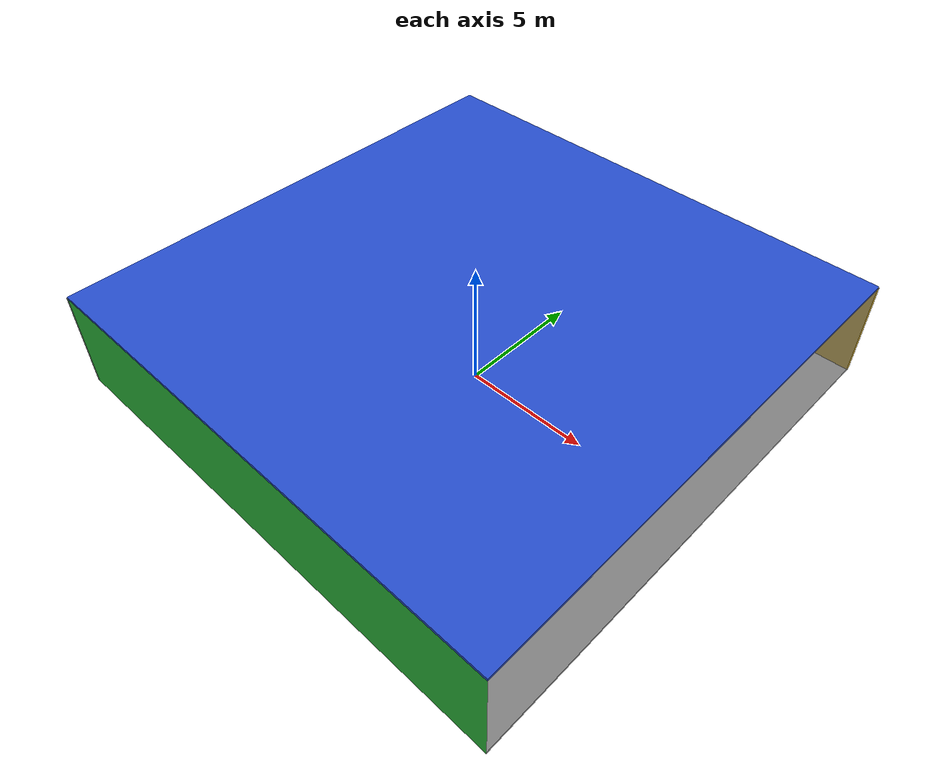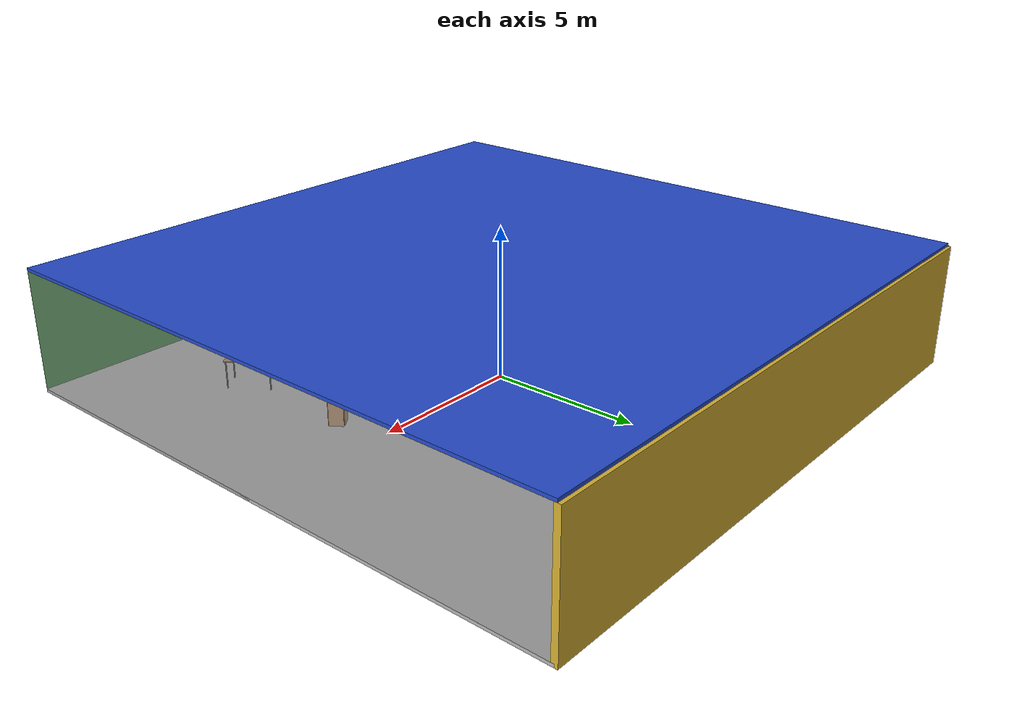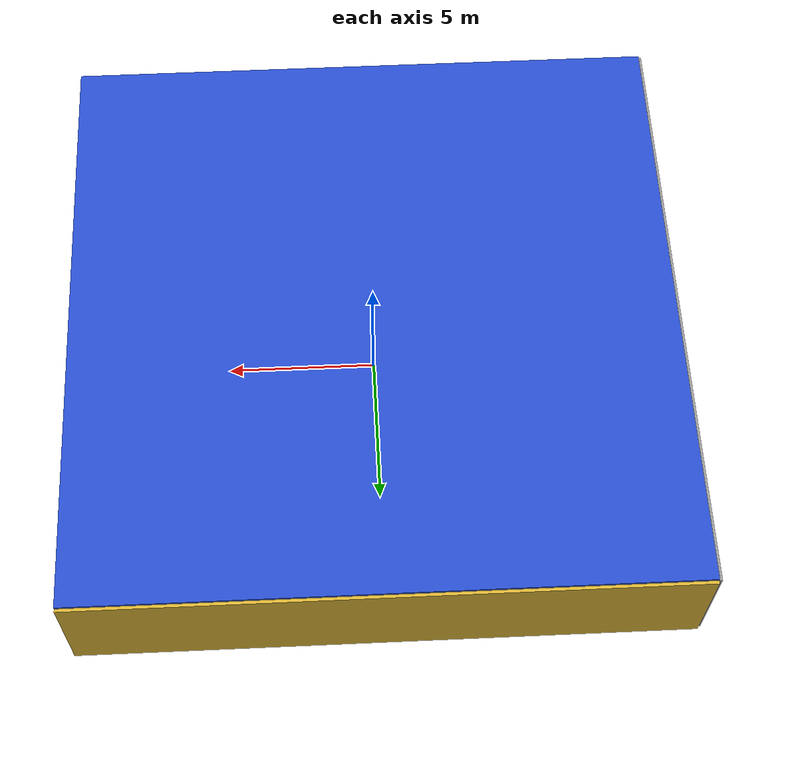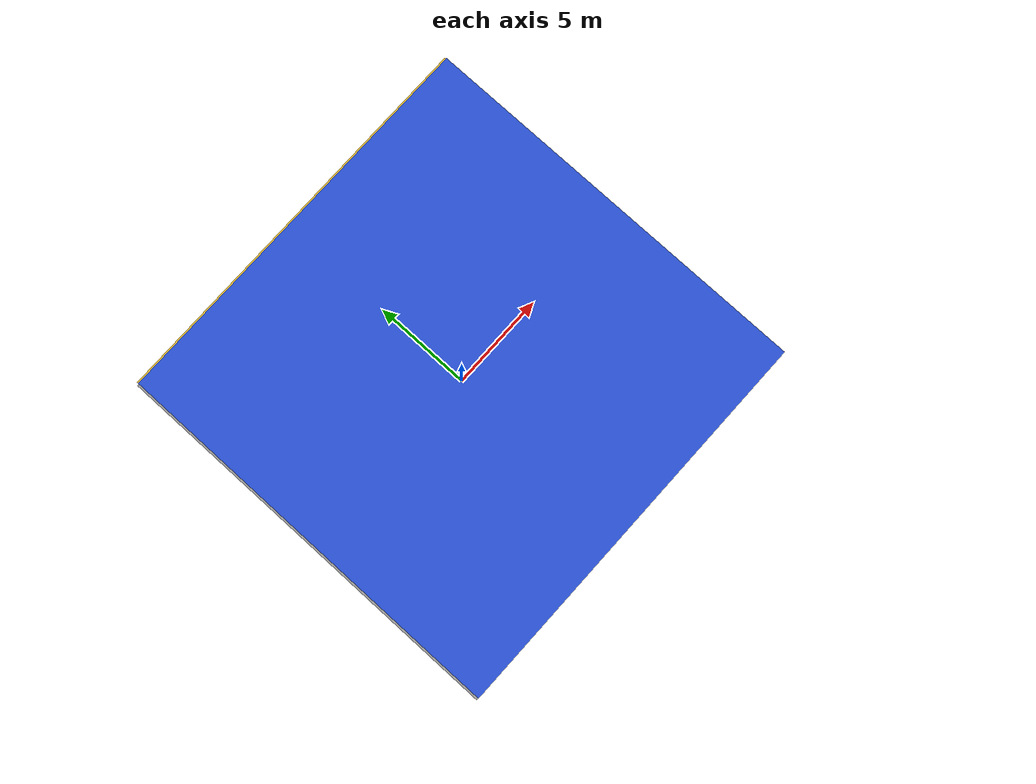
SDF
<sdf version="1.4">
 <world name="default">
  <physics type="ode">
   <max_step_size>0.001</max_step_size>
   <real_time_factor>1</real_time_factor>
   <real_time_update_rate>1000</real_time_update_rate>
   <gravity>0 0 -9.8</gravity>
  </physics>
  <scene><ambient>0.4 0.4 0.4 1</ambient><background>0.7 0.7 0.7 1</background><shadows>1</shadows></scene>
  <model name="Surrounding">
   <static>1</static>
   <link name="Ceiling">
    <collision name="Ceiling_Collision"><geometry><box><size>20 20 0.1</size></box></geometry></collision>
    <visual name="Ceiling_Visual">
     <geometry><box><size>20 20 0.1</size></box></geometry>
     <material>
      <script><uri>file://media/materials/scripts/gazebo.material</uri><name>Gazebo/BlueLaser</name></script>
     </material>
    </visual>
    <pose>0 0 4.05 0 0 0</pose>
   </link>
   <link name="Wall_South">
    <collision name="Wall_South_Collision">
     <geometry><box><size>20 0 4</size></box></geometry>
     <pose>0 0 2 0 -0 0</pose>
    </collision>
    <visual name="Wall_South_Visual">
     <pose>0 0 2 0 -0 0</pose>
     <geometry><box><size>20 0 4</size></box></geometry>
     <material>
      <script><uri>file://media/materials/scripts/gazebo.material</uri><name>Gazebo/Green</name></script>
     </material>
    </visual>
    <velocity_decay><linear>0</linear><angular>0</angular></velocity_decay>
    <pose>0 -10 0 0 -0 0</pose>
   </link>
   <link name="Wall_East">
    <collision name="Wall_21_Collision">
     <geometry><box><size>20 0 4</size></box></geometry>
     <pose>0 0 2 0 -0 0</pose>
    </collision>
    <visual name="Wall_21_Visual">
     <pose>0 0 2 0 -0 0</pose>
     <geometry><box><size>20 0 4</size></box></geometry>
     <material>
      <script><uri>file://media/materials/scripts/gazebo.material</uri><name>Gazebo/GreyTransparent</name></script>
     </material>
    </visual>
    <velocity_decay><linear>0</linear><angular>0</angular></velocity_decay>
    <pose>10 0 0 0 -0 1.5708</pose>
   </link>
   <link name="Wall_North">
    <collision name="Wall_22_Collision">
     <geometry><box><size>20 0.2 4</size></box></geometry>
     <pose>0 0 2 0 -0 0</pose>
    </collision>
    <visual name="Wall_22_Visual">
     <pose>0 0 2 0 -0 0</pose>
     <geometry><box><size>20 0.2 4</size></box></geometry>
     <material>
      <script><uri>file://media/materials/scripts/gazebo.material</uri><name>Gazebo/Gold</name></script>
     </material>
    </visual>
    <velocity_decay><linear>0</linear><angular>0</angular></velocity_decay>
    <pose>0 10 0 0 -0 0</pose>
   </link>
   <link name="Wall_West">
    <collision name="Wall_23_Collision">
     <geometry><box><size>20 0.2 4</size></box></geometry>
     <pose>0 0 2 0 -0 0</pose>
    </collision>
    <visual name="Wall_23_Visual">
     <pose>0 0 2 0 -0 0</pose>
     <geometry><box><size>20 0.2 4</size></box></geometry>
     <material>
      <script><uri>file://media/materials/scripts/gazebo.material</uri><name>Gazebo/Grey</name></script>
     </material>
    </visual>
    <velocity_decay><linear>0</linear><angular>0</angular></velocity_decay>
    <pose>-10 0 0 0 0 -1.5708</pose>
   </link>
   <link name="Ground_link">
    <collision name="collision">
     <pose>0 0 .05 0 -0 0</pose>
     <geometry><box><size>20 20 0.1</size></box></geometry>
    </collision>
    <visual name="visual">
     <pose>0 0 .05 0 -0 0</pose>
     <geometry><box><size>20 20 0.1</size></box></geometry>
     <material>
      <script><uri>file://media/materials/scripts/gazebo.material</uri><name>Gazebo/LightOff</name></script>
     </material>
    </visual>
   </link>
   <static>1</static>
  </model>
  <spherical_coordinates>
   <surface_model>EARTH_WGS84</surface_model>
   <latitude_deg>0</latitude_deg>
   <longitude_deg>0</longitude_deg>
   <elevation>0</elevation>
   <heading_deg>0</heading_deg>
  </spherical_coordinates>
  <light name="lightball_0" type="diffuse">
   <diffuse>0.8 0.8 0.8 1</diffuse>
   <specular>0.2 0.2 0.2 1</specular>
   <attenuation>
    <range>100</range>
    <constant>0.7</constant>
    <linear>0.01</linear>
    <quadratic>0.001</quadratic>
   </attenuation>
   <direction>-0.5 0.1 -0.9</direction>
   <pose>3.0136596727 1.60061382494 3.38700188408 0 0 0</pose>
  </light>
  <light name="lightball_1" type="diffuse">
   <diffuse>0.8 0.8 0.8 1</diffuse>
   <specular>0.2 0.2 0.2 1</specular>
   <attenuation>
    <range>100</range>
    <constant>0.7</constant>
    <linear>0.01</linear>
    <quadratic>0.001</quadratic>
   </attenuation>
   <direction>-0.5 0.1 -0.9</direction>
   <pose>1.60305051659 -0.270401929357 2.07899209942 0 0 0</pose>
  </light>
  <light name="lightball_2" type="diffuse">
   <diffuse>0.8 0.8 0.8 1</diffuse>
   <specular>0.2 0.2 0.2 1</specular>
   <attenuation>
    <range>100</range>
    <constant>0.7</constant>
    <linear>0.01</linear>
    <quadratic>0.001</quadratic>
   </attenuation>
   <direction>-0.5 0.1 -0.9</direction>
   <pose>-9.50304794071 -6.89590156737 0.644569676305 0 0 0</pose>
  </light>
  <light name="lightball_3" type="diffuse">
   <diffuse>0.8 0.8 0.8 1</diffuse>
   <specular>0.2 0.2 0.2 1</specular>
   <attenuation>
    <range>100</range>
    <constant>0.7</constant>
    <linear>0.01</linear>
    <quadratic>0.001</quadratic>
   </attenuation>
   <direction>-0.5 0.1 -0.9</direction>
   <pose>-5.04267404588 -9.34018341837 0.752233719186 0 0 0</pose>
  </light>
  <light name="lightball_4" type="diffuse">
   <diffuse>0.8 0.8 0.8 1</diffuse>
   <specular>0.2 0.2 0.2 1</specular>
   <attenuation>
    <range>100</range>
    <constant>0.7</constant>
    <linear>0.01</linear>
    <quadratic>0.001</quadratic>
   </attenuation>
   <direction>-0.5 0.1 -0.9</direction>
   <pose>7.26583844173 0.278123816117 1.33857644865 0 0 0</pose>
  </light>
  <light name="lightball_5" type="diffuse">
   <diffuse>0.8 0.8 0.8 1</diffuse>
   <specular>0.2 0.2 0.2 1</specular>
   <attenuation>
    <range>100</range>
    <constant>0.7</constant>
    <linear>0.01</linear>
    <quadratic>0.001</quadratic>
   </attenuation>
   <direction>-0.5 0.1 -0.9</direction>
   <pose>-0.337987959079 -7.57929066062 2.4921449748 0 0 0</pose>
  </light>
  <light name="lightball_6" type="diffuse">
   <diffuse>0.8 0.8 0.8 1</diffuse>
   <specular>0.2 0.2 0.2 1</specular>
   <attenuation>
    <range>100</range>
    <constant>0.7</constant>
    <linear>0.01</linear>
    <quadratic>0.001</quadratic>
   </attenuation>
   <direction>-0.5 0.1 -0.9</direction>
   <pose>-8.38755475339 -1.7826778005 3.3236859277 0 0 0</pose>
  </light>
  <light name="lightball_7" type="diffuse">
   <diffuse>0.8 0.8 0.8 1</diffuse>
   <specular>0.2 0.2 0.2 1</specular>
   <attenuation>
    <range>100</range>
    <constant>0.7</constant>
    <linear>0.01</linear>
    <quadratic>0.001</quadratic>
   </attenuation>
   <direction>-0.5 0.1 -0.9</direction>
   <pose>-8.20219220522 7.25897747301 2.15339428415 0 0 0</pose>
  </light>
  <light name="lightball_8" type="diffuse">
   <diffuse>0.8 0.8 0.8 1</diffuse>
   <specular>0.2 0.2 0.2 1</specular>
   <attenuation>
    <range>100</range>
    <constant>0.7</constant>
    <linear>0.01</linear>
    <quadratic>0.001</quadratic>
   </attenuation>
   <direction>-0.5 0.1 -0.9</direction>
   <pose>8.74519998402 -9.6281156979 2.66039688342 0 0 0</pose>
  </light>
  <light name="lightball_9" type="diffuse">
   <diffuse>0.8 0.8 0.8 1</diffuse>
   <specular>0.2 0.2 0.2 1</specular>
   <attenuation>
    <range>100</range>
    <constant>0.7</constant>
    <linear>0.01</linear>
    <quadratic>0.001</quadratic>
   </attenuation>
   <direction>-0.5 0.1 -0.9</direction>
   <pose>4.3881773941 -2.15467361102 3.6792342899 0 0 0</pose>
  </light>
  <light name="lightball_10" type="diffuse">
   <diffuse>0.8 0.8 0.8 1</diffuse>
   <specular>0.2 0.2 0.2 1</specular>
   <attenuation>
    <range>100</range>
    <constant>0.7</constant>
    <linear>0.01</linear>
    <quadratic>0.001</quadratic>
   </attenuation>
   <direction>-0.5 0.1 -0.9</direction>
   <pose>-3.66826232612 -1.97764010614 3.74439483802 0 0 0</pose>
  </light>
  <light name="lightball_11" type="diffuse">
   <diffuse>0.8 0.8 0.8 1</diffuse>
   <specular>0.2 0.2 0.2 1</specular>
   <attenuation>
    <range>100</range>
    <constant>0.7</constant>
    <linear>0.01</linear>
    <quadratic>0.001</quadratic>
   </attenuation>
   <direction>-0.5 0.1 -0.9</direction>
   <pose>1.63857116731 0.291998000337 3.3621876525 0 0 0</pose>
  </light>
  <include>
   <uri>model://robocup_3Dsim_goal</uri>
   <pose>-5.23147255599 -5.5072214591 0 0 0 1.50664369362</pose>
  </include>
  <include>
   <uri>model://construction_cone</uri>
   <pose>-5.55865234448 4.67037469056 0 0 0 1.48220233305</pose>
  </include>
  <include><uri>model://cabinet</uri><pose>-0.824749965078 5.05655441625 0 0 0 0.896018153534</pose></include>
  <include>
   <uri>model://robocup_3Dsim_goal</uri>
   <pose>-1.2796780501 8.57384185517 0 0 0 2.75267672241</pose>
  </include>
  <include><uri>model://cabinet</uri><pose>2.45640430173 -1.25604849412 0 0 0 0.503042526931</pose></include>
  <include><uri>model://table</uri><pose>5.60094779215 -5.45576711305 0 0 0 2.20129527288</pose></include>
  <include><uri>model://cabinet</uri><pose>5.63232128141 -1.4646070753 0 0 0 0.62102573408</pose></include>
 </world>
</sdf>

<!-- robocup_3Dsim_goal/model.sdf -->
<sdf version="1.5">
  <model name="robocup_3d_goal">
    <static>true</static>
    <link name="left_post">
      <pose>0 1.05 0.45 0 0 0</pose>
      <collision name="collision">
        <geometry>
          <cylinder>
            <radius>0.05</radius>
            <length>0.9</length>
          </cylinder>
        </geometry>
      </collision>
      <visual name="visual">
        <geometry>
          <cylinder>
            <radius>0.05</radius>
            <length>0.9</length>
          </cylinder>
        </geometry>
        <material>
          <script>
            <uri>file://media/materials/scripts/gazebo.material</uri>
            <name>Gazebo/ZincYellow</name>
          </script>
        </material>
      </visual>
    </link>
    <link name="left_support_horiz_lower">
      <pose>0.30 1.05 0.01 0 0 0</pose>
      <collision name="collision">
        <geometry>
          <box>
            <size>0.50 0.02 0.02</size>
          </box>
        </geometry>
      </collision>
      <visual name="visual">
        <geometry>
          <box>
            <size>0.50 0.02 0.02</size>
          </box>
        </geometry>
        <material>
          <script>
            <uri>file://media/materials/scripts/gazebo.material</uri>
            <name>Gazebo/White</name>
          </script>
        </material>
      </visual>
    </link>
    <link name="left_support_horiz_upper">
      <pose>0.30 1.05 0.79 0 0 0</pose>
      <collision name="collision">
        <geometry>
          <box>
            <size>0.50 0.02 0.02</size>
          </box>
        </geometry>
      </collision>
      <visual name="visual">
        <geometry>
          <box>
            <size>0.50 0.02 0.02</size>
          </box>
        </geometry>
        <material>
          <script>
            <uri>file://media/materials/scripts/gazebo.material</uri>
            <name>Gazebo/White</name>
          </script>
        </material>
      </visual>
    </link>
    <link name="left_support_vertical">
      <pose>0.56 1.05 0.4 0 1.5708 0</pose>
      <collision name="collision">
        <geometry>
          <box>
            <size>0.80 0.02 0.02</size>
          </box>
        </geometry>
      </collision>
      <visual name="visual">
        <geometry>
          <box>
            <size>0.80 0.02 0.02</size>
          </box>
        </geometry>
        <material>
          <script>
            <uri>file://media/materials/scripts/gazebo.material</uri>
            <name>Gazebo/White</name>
          </script>
        </material>
      </visual>
    </link>
    <link name="right_support_horiz_lower">
      <pose>0.30 -1.05 0.01 0 0 0</pose>
      <collision name="collision">
        <geometry>
          <box>
            <size>0.50 0.02 0.02</size>
          </box>
        </geometry>
      </collision>
      <visual name="visual">
        <geometry>
          <box>
            <size>0.50 0.02 0.02</size>
          </box>
        </geometry>
        <material>
          <script>
            <uri>file://media/materials/scripts/gazebo.material</uri>
            <name>Gazebo/White</name>
          </script>
        </material>
      </visual>
    </link>
    <link name="right_support_horiz_upper">
      <pose>0.30 -1.05 0.79 0 0 0</pose>
      <collision name="collision">
        <geometry>
          <box>
            <size>0.50 0.02 0.02</size>
          </box>
        </geometry>
      </collision>
      <visual name="visual">
        <geometry>
          <box>
            <size>0.50 0.02 0.02</size>
          </box>
        </geometry>
        <material>
          <script>
            <uri>file://media/materials/scripts/gazebo.material</uri>
            <name>Gazebo/White</name>
          </script>
        </material>
      </visual>
    </link>
    <link name="right_support_vertical">
      <pose>0.56 -1.05 0.4 0 1.5708 0</pose>
      <collision name="collision">
        <geometry>
          <box>
            <size>0.80 0.02 0.02</size>
          </box>
        </geometry>
      </collision>
      <visual name="visual">
        <geometry>
          <box>
            <size>0.80 0.02 0.02</size>
          </box>
        </geometry>
        <material>
          <script>
            <uri>file://media/materials/scripts/gazebo.material</uri>
            <name>Gazebo/White</name>
          </script>
        </material>
      </visual>
    </link>
    <link name="center_support_horiz_lower">
      <pose>0.56 0 0.01 0 1.5708 0</pose>
      <collision name="collision">
        <geometry>
          <box>
            <size>0.02 2.08 0.02</size>
          </box>
        </geometry>
      </collision>
      <visual name="visual">
        <geometry>
          <box>
            <size>0.02 2.08 0.02</size>
          </box>
        </geometry>
        <material>
          <script>
            <uri>file://media/materials/scripts/gazebo.material</uri>
            <name>Gazebo/White</name>
          </script>
        </material>
      </visual>
    </link>
    <link name="center_support_horiz_upper">
      <pose>0.56 0 0.79 0 1.5708 0</pose>
      <collision name="collision">
        <geometry>
          <box>
            <size>0.02 2.08 0.02</size>
          </box>
        </geometry>
      </collision>
      <visual name="visual">
        <geometry>
          <box>
            <size>0.02 2.08 0.02</size>
          </box>
        </geometry>
        <material>
          <script>
            <uri>file://media/materials/scripts/gazebo.material</uri>
            <name>Gazebo/White</name>
          </script>
        </material>
      </visual>
    </link>
    <link name="right_post">
      <pose>0 -1.05 0.45 0 0 0</pose>
      <collision name="collision">
        <geometry>
          <cylinder>
            <radius>0.05</radius>
            <length>0.9</length>
          </cylinder>
        </geometry>
      </collision>
      <visual name="visual">
        <geometry>
          <cylinder>
            <radius>0.05</radius>
            <length>0.9</length>
          </cylinder>
        </geometry>
        <material>
          <script>
            <uri>file://media/materials/scripts/gazebo.material</uri>
            <name>Gazebo/ZincYellow</name>
          </script>
        </material>
      </visual>
    </link>
    <link name="crossbar">
      <pose>0 0 0.85 1.57 1.57 0</pose>
      <collision name="collision">
        <geometry>
          <cylinder>
            <radius>0.05</radius>
            <length>2.0</length>
          </cylinder>
        </geometry>
      </collision>
      <visual name="visual">
        <geometry>
          <cylinder>
            <radius>0.05</radius>
            <length>2.0</length>
          </cylinder>
        </geometry>
        <material>
          <script>
            <uri>file://media/materials/scripts/gazebo.material</uri>
            <name>Gazebo/ZincYellow</name>
          </script>
        </material>
      </visual>
    </link>
    <link name="center_net">
      <pose>0.56 0 0.40 0 0 0</pose>
      <collision name="collision">
        <geometry>
          <box>
            <size>0.01 2.1 0.80</size>
          </box>
        </geometry>
      </collision>
      <visual name="visual">
        <geometry>
          <box>
            <size>0.01 2.1 0.80</size>
          </box>
        </geometry>
        <material>
          <script>
            <uri>model://../model_source/models/robocup09_spl_field/materials/scripts/</uri>
            <uri>model://../model_source/models/robocup09_spl_field/materials/textures/</uri>
            <name>RoboCup/Net</name>
          </script>
        </material>
      </visual>
    </link>
    <link name="left_net">
      <pose>0.30 1.05 0.40 0 0 0</pose>
      <collision name="collision">
        <geometry>
          <box>
            <size>0.50 0.01 0.76</size>
          </box>
        </geometry>
      </collision>
      <visual name="visual">
        <geometry>
          <box>
            <size>0.50 0.01 0.76</size>
          </box>
        </geometry>
        <material>
          <script>
            <uri>model://../model_source/models/robocup09_spl_field/materials/scripts/</uri>
            <uri>model://../model_source/models/robocup09_spl_field/materials/textures/</uri>
            <name>RoboCup/Net</name>
          </script>
        </material>
      </visual>
    </link>
    <link name="right_net">
      <pose>0.30 -1.05 0.40 0 0 0</pose>
      <collision name="collision">
        <geometry>
          <box>
            <size>0.50 0.01 0.76</size>
          </box>
        </geometry>
      </collision>
      <visual name="visual">
        <geometry>
          <box>
            <size>0.50 0.01 0.76</size>
          </box>
        </geometry>
        <material>
          <script>
            <uri>model://../model_source/models/robocup09_spl_field/materials/scripts/</uri>
            <uri>model://../model_source/models/robocup09_spl_field/materials/textures/</uri>
            <name>RoboCup/Net</name>
          </script>
        </material>
      </visual>
    </link>
  </model>
</sdf>

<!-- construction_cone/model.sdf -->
<sdf version="1.5">
  <model name="Construction Cone">
    <link name="link">
      <collision name="collision">
        <geometry>
          <mesh>
            <scale>10 10 10</scale>
            <uri>file://isr-testbed/construction_cone/meshes/construction_cone.dae</uri>
          </mesh>
        </geometry>
      </collision>
      <visual name="visual">
        <geometry>
          <mesh>
            <scale>10 10 10</scale>
            <uri>file://isr-testbed/construction_cone/meshes/construction_cone.dae</uri>
          </mesh>
        </geometry>
      </visual>
    </link>
  </model>
</sdf>

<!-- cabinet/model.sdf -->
<sdf version="1.5">
  <model name="cabinet">
    <static>true</static>
    <link name="cabinet_bottom_plate">
      <inertial>
        <pose>0 0 -1 0 0 0</pose>
        <inertia>
          <ixx>2.050000</ixx>
          <ixy>0</ixy>
          <ixz>0</ixz>
          <iyy>2.050000</iyy>
          <iyz>0</iyz>
          <izz>2.050000</izz>
        </inertia>
        <mass>25.000000</mass>
      </inertial>
      <collision name="cabinet_bottom_plate_geom">
        <pose>0 0 0.010000 0 0 0</pose>
        <geometry>
          <box>
            <size>0.450000 0.450000 0.020000</size>
          </box>
        </geometry>
      </collision>
      <visual name="cabinet_bottom_plate_geom_visual">
        <pose>0 0 0.010000 0 0 0</pose>
        <geometry>
          <box>
            <size>0.450000 0.450000 0.020000</size>
          </box>
        </geometry>
        <material>
          <script>
            <uri>model://media/materials/scripts/gazebo.material</uri>
            <name>Gazebo/Wood</name>
          </script>
        </material>
      </visual>
      <collision name="cabinet_bottom_plate_geom_cabinet_back_plate">
        <pose>0.235000 0 0.510000 0 0 0</pose>
        <geometry>
          <box>
            <size>0.020000 0.450000 1.020000</size>
          </box>
        </geometry>
      </collision>
      <visual name="cabinet_bottom_plate_geom_cabinet_back_plate_visual">
        <pose>0.235000 0 0.510000 0 0 0</pose>
        <geometry>
          <box>
            <size>0.020000 0.450000 1.020000</size>
          </box>
        </geometry>
        <material>
          <script>
            <uri>model://media/materials/scripts/gazebo.material</uri>
            <name>Gazebo/Wood</name>
          </script>
        </material>
      </visual>
      <collision name="cabinet_bottom_plate_geom_cabinet_left_plate">
        <pose>0 0.235000 0.510000 0 0 0</pose>
        <geometry>
          <box>
            <size>0.450000 0.020000 1.020000</size>
          </box>
        </geometry>
      </collision>
      <visual name="cabinet_bottom_plate_geom_cabinet_left_plate_visual">
        <pose>0 0.235000 0.510000 0 0 0</pose>
        <geometry>
          <box>
            <size>0.450000 0.020000 1.020000</size>
          </box>
        </geometry>
        <material>
          <script>
            <uri>model://media/materials/scripts/gazebo.material</uri>
            <name>Gazebo/Wood</name>
          </script>
        </material>
      </visual>
      <collision name="cabinet_bottom_plate_geom_cabinet_middle_plate">
        <pose>0 0 0.510000 0 0 0</pose>
        <geometry>
          <box>
            <size>0.450000 0.450000 0.020000</size>
          </box>
        </geometry>
      </collision>
      <visual name="cabinet_bottom_plate_geom_cabinet_middle_plate_visual">
        <pose>0 0 0.510000 0 0 0</pose>
        <geometry>
          <box>
            <size>0.450000 0.450000 0.020000</size>
          </box>
        </geometry>
        <material>
          <script>
            <uri>model://media/materials/scripts/gazebo.material</uri>
            <name>Gazebo/Wood</name>
          </script>
        </material>
      </visual>
      <collision name="cabinet_bottom_plate_geom_cabinet_right_plate">
        <pose>0 -0.235000 0.510000 0 0 0</pose>
        <geometry>
          <box>
            <size>0.450000 0.020000 1.020000</size>
          </box>
        </geometry>
      </collision>
      <visual name="cabinet_bottom_plate_geom_cabinet_right_plate_visual">
        <pose>0 -0.235000 0.510000 0 0 0</pose>
        <geometry>
          <box>
            <size>0.450000 0.020000 1.020000</size>
          </box>
        </geometry>
        <material>
          <script>
            <uri>model://media/materials/scripts/gazebo.material</uri>
            <name>Gazebo/Wood</name>
          </script>
        </material>
      </visual>
      <collision name="cabinet_bottom_plate_geom_cabinet_top_plate">
        <pose>0 0 1.010000 0 0 0</pose>
        <geometry>
          <box>
            <size>0.450000 0.450000 0.020000</size>
          </box>
        </geometry>
      </collision>
      <visual name="cabinet_bottom_plate_geom_cabinet_top_plate_visual">
        <pose>0 0 1.010000 0 0 0</pose>
        <geometry>
          <box>
            <size>0.450000 0.450000 0.020000</size>
          </box>
        </geometry>
        <material>
          <script>
            <uri>model://media/materials/scripts/gazebo.material</uri>
            <name>Gazebo/Wood</name>
          </script>
        </material>
      </visual>
    </link>
  </model>
</sdf>

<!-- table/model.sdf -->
<sdf version="1.5">
  <model name="table">
    <static>true</static>
    <link name="link">
      <collision name="surface">
        <pose>0 0 1.0 0 0 0</pose>
        <geometry>
          <box>
            <size>1.5 0.8 0.03</size>
          </box>
        </geometry>
        <surface>
          <friction>
            <ode>
              <mu>0.6</mu>
              <mu2>0.6</mu2>
            </ode>
          </friction>
        </surface>
      </collision>
      <visual name="visual1">
        <pose>0 0 1.0 0 0 0</pose>
        <geometry>
          <box>
            <size>1.5 0.8 0.03</size>
          </box>
        </geometry>
        <material>
          <script>
            <uri>model://media/materials/scripts/gazebo.material</uri>
            <name>Gazebo/Wood</name>
          </script>
        </material>
      </visual>
      <collision name="front_left_leg">
        <pose>0.68 0.38 0.5 0 0 0</pose>
        <geometry>
          <cylinder>
            <radius>0.02</radius>
            <length>1.0</length>
          </cylinder>
        </geometry>
      </collision>
      <visual name="front_left_leg">
        <pose>0.68 0.38 0.5 0 0 0</pose>
        <geometry>
          <cylinder>
            <radius>0.02</radius>
            <length>1.0</length>
          </cylinder>
        </geometry>
        <material>
          <script>
            <uri>model://media/materials/scripts/gazebo.material</uri>
            <name>Gazebo/Grey</name>
          </script>
        </material>
      </visual>
      <collision name="front_right_leg">
        <pose>0.68 -0.38 0.5 0 0 0</pose>
        <geometry>
          <cylinder>
            <radius>0.02</radius>
            <length>1.0</length>
          </cylinder>
        </geometry>
      </collision>
      <visual name="front_right_leg">
        <pose>0.68 -0.38 0.5 0 0 0</pose>
        <geometry>
          <cylinder>
            <radius>0.02</radius>
            <length>1.0</length>
          </cylinder>
        </geometry>
        <material>
          <script>
            <uri>model://media/materials/scripts/gazebo.material</uri>
            <name>Gazebo/Grey</name>
          </script>
        </material>
      </visual>
      <collision name="back_right_leg">
        <pose>-0.68 -0.38 0.5 0 0 0</pose>
        <geometry>
          <cylinder>
            <radius>0.02</radius>
            <length>1.0</length>
          </cylinder>
        </geometry>
      </collision>
      <visual name="back_right_leg">
        <pose>-0.68 -0.38 0.5 0 0 0</pose>
        <geometry>
          <cylinder>
            <radius>0.02</radius>
            <length>1.0</length>
          </cylinder>
        </geometry>
        <material>
          <script>
            <uri>model://media/materials/scripts/gazebo.material</uri>
            <name>Gazebo/Grey</name>
          </script>
        </material>
      </visual>
      <collision name="back_left_leg">
        <pose>-0.68 0.38 0.5 0 0 0</pose>
        <geometry>
          <cylinder>
            <radius>0.02</radius>
            <length>1.0</length>
          </cylinder>
        </geometry>
      </collision>
      <visual name="back_left_leg">
        <pose>-0.68 0.38 0.5 0 0 0</pose>
        <geometry>
          <cylinder>
            <radius>0.02</radius>
            <length>1.0</length>
          </cylinder>
        </geometry>
        <material>
          <script>
            <uri>model://media/materials/scripts/gazebo.material</uri>
            <name>Gazebo/Grey</name>
          </script>
        </material>
      </visual>
    </link>
  </model>
</sdf>
